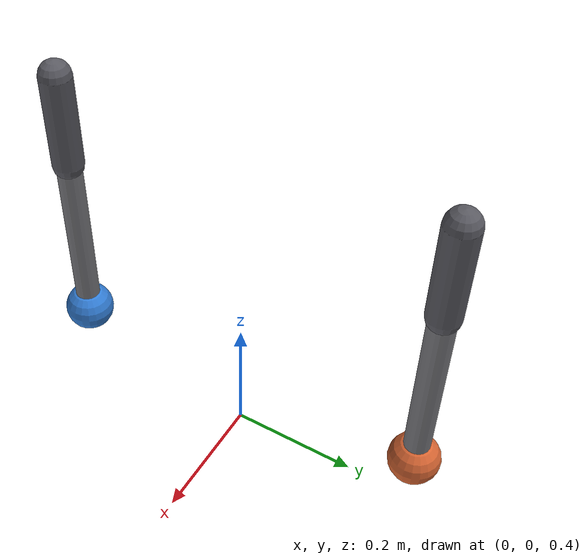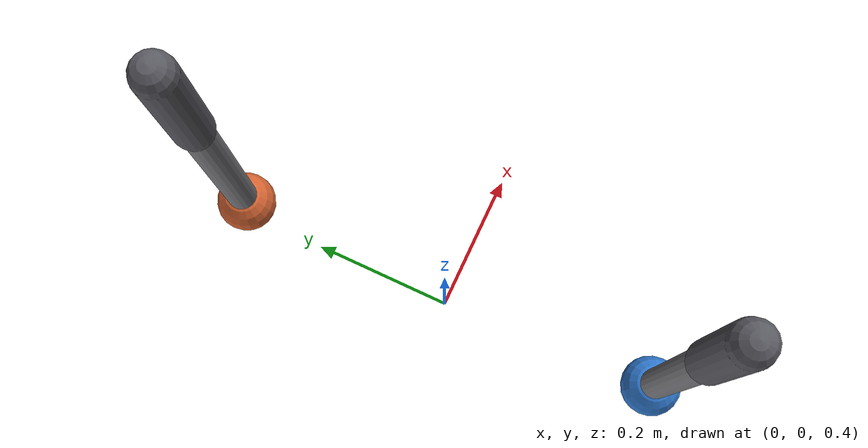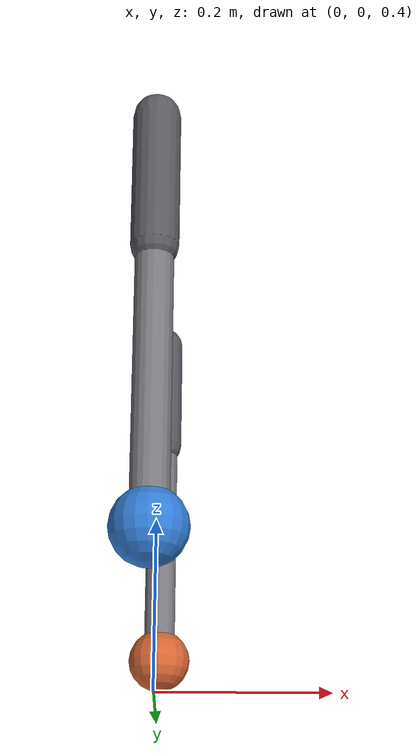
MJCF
<mujoco model="force-length">
  <compiler angle="radian"/>
  <option gravity="0 0 0" timestep="0.001" integrator="RK4">
    <flag energy="enable"/>
  </option>

  <default>
    <geom contype="0" conaffinity="0"/>
  </default>

  <worldbody>
    <!-- Left arm: wide FL range (lmin=0.5, lmax=1.6) — broad force curve -->
    <body name="upper_wide" pos="0 -0.3 0.8">
      <geom name="upper_wide" type="capsule" size="0.025"
            fromto="0 0 0.15  0 0 0" rgba="0.35 0.35 0.38 1"/>
      <body name="forearm_wide" pos="0 0 0">
        <joint name="elbow_wide" type="hinge" axis="0 1 0"
               range="-1.57 1.57" limited="true" damping="0.3"/>
        <inertial pos="0 0 -0.15" mass="1.0"
                  diaginertia="0.015 0.015 0.001"/>
        <geom name="rod_wide" type="capsule" size="0.02"
              fromto="0 0 0  0 0 -0.3" rgba="0.48 0.48 0.50 1"/>
        <geom name="tip_wide" type="sphere" size="0.04"
              pos="0 0 -0.3" rgba="0.2 0.5 0.85 1"/>
      </body>
    </body>

    <!-- Right arm: narrow FL range (lmin=0.8, lmax=1.2) — sharp force peak -->
    <body name="upper_narrow" pos="0 0.3 0.8">
      <geom name="upper_narrow" type="capsule" size="0.025"
            fromto="0 0 0.15  0 0 0" rgba="0.35 0.35 0.38 1"/>
      <body name="forearm_narrow" pos="0 0 0">
        <joint name="elbow_narrow" type="hinge" axis="0 1 0"
               range="-1.57 1.57" limited="true" damping="0.3"/>
        <inertial pos="0 0 -0.15" mass="1.0"
                  diaginertia="0.015 0.015 0.001"/>
        <geom name="rod_narrow" type="capsule" size="0.02"
              fromto="0 0 0  0 0 -0.3" rgba="0.48 0.48 0.50 1"/>
        <geom name="tip_narrow" type="sphere" size="0.04"
              pos="0 0 -0.3" rgba="0.85 0.4 0.2 1"/>
      </body>
    </body>
  </worldbody>

  <actuator>
    <!-- Muscles: fully activated, force depends on joint position -->
    <muscle name="wide" joint="elbow_wide"
            scale="50" range="0.75 1.05"
            lmin="0.5" lmax="1.6" vmax="1.0"
            fpmax="0.3" fvmax="1.4"
            timeconst="0.01 0.04"/>
    <muscle name="narrow" joint="elbow_narrow"
            scale="50" range="0.75 1.05"
            lmin="0.8" lmax="1.2" vmax="1.0"
            fpmax="0.3" fvmax="1.4"
            timeconst="0.01 0.04"/>

    <!-- Position servos to sweep joint angle -->
    <position name="sweep_wide" joint="elbow_wide" kp="20" dampratio="1"/>
    <position name="sweep_narrow" joint="elbow_narrow" kp="20" dampratio="1"/>
  </actuator>

  <sensor>
    <jointpos name="jpos_wide" joint="elbow_wide"/>
    <jointpos name="jpos_narrow" joint="elbow_narrow"/>
    <actuatorfrc name="frc_wide" actuator="wide"/>
    <actuatorfrc name="frc_narrow" actuator="narrow"/>
  </sensor>
</mujoco>
